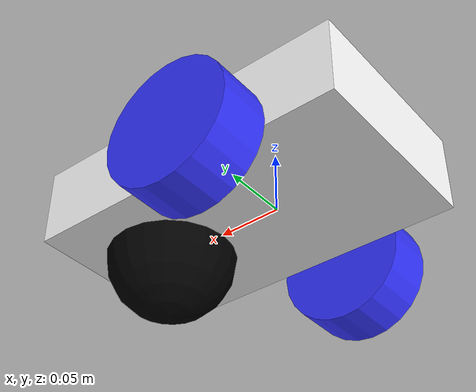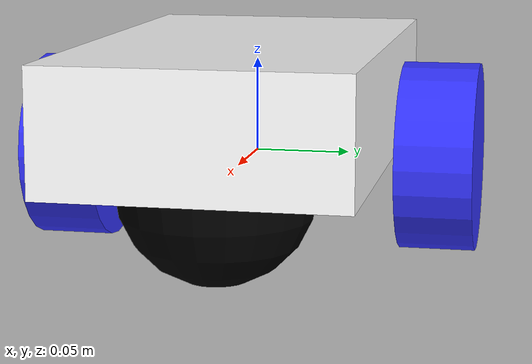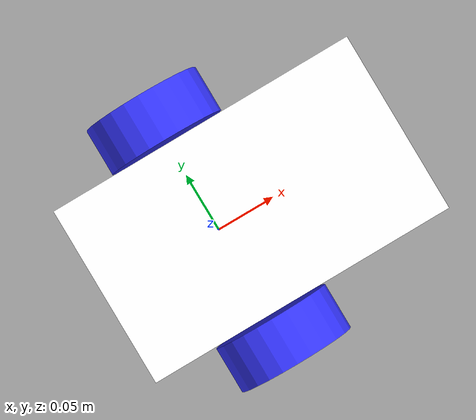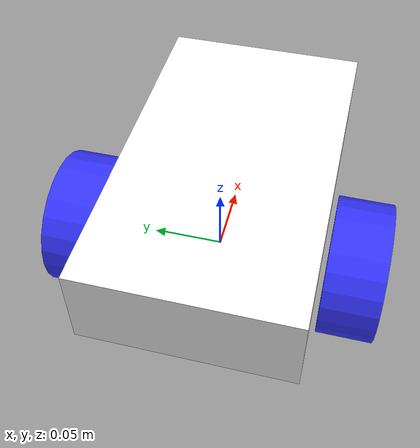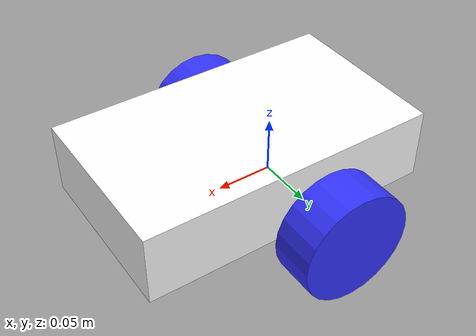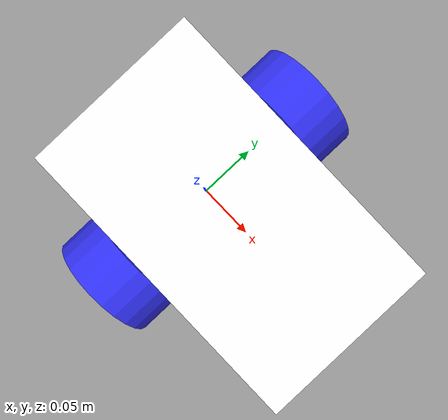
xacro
<?xml version="1.0"?>
<robot xmlns:xacro="http://www.ros.org/wiki/xacro" >

    <xacro:include filename="inertial_macros.xacro"/>

    <material name="white">
        <color rgba="1 1 1 1"/>
    </material>

    <material name="orange">
        <color rgba="1 0.3 0.1 1"/>
    </material>

    <material name="blue">
        <color rgba="0.2 0.2 1 1"/>
    </material>

    <material name="black">
        <color rgba="0 0 0 1"/>
    </material>

<!-- base link -->

    <link name="base_link">

    </link>

<!--  chassis link-->

    <joint name="chassis_joint" type="fixed">
        <parent link="base_link"/>
        <child link="chassis"/>
        <origin xyz="-0.1 0 0"/>
    </joint>

    <link name="chassis">
        <visual>
            <origin xyz="0.13 0 0.032"/>
            <geometry>
                <box size="0.26 0.152 0.063"/>
            </geometry>
            <material name="white"/>
        </visual>

         <collision>
            <origin xyz="0.13 0 0.032"/>
            <geometry>
                <box size="0.26 0.152 0.063"/>
            </geometry>
        </collision>
        <xacro:inertial_box mass="0.5" x="0.26" y="0.152" z="0.063">
            <origin xyz="0.13 0 0.032" rpy="0 0 0"/>
        </xacro:inertial_box>

    </link>

<!--  left wheel link-->

    <joint name="left_wheel_joint" type="continuous">
        <parent link="base_link"/>
        <child link="left_wheel"/>
        <origin xyz="0 0.1 0" rpy="-${pi/2} 0 0"/>
        <axis xyz="0 0 1" />
    </joint>

    <link name="left_wheel">
        <visual>
            <geometry>
                <cylinder radius="0.05" length="0.04"/>
            </geometry>
            <material name="blue"/>
        </visual>

        <collision>
            <geometry>
                <cylinder radius="0.05" length="0.04"/>
            </geometry>
        </collision>

        <xacro:inertial_cylinder mass="0.1" length="0.04" radius="0.05">
            <origin xyz="0 0 0 " rpy="0 0 0"/>

        </xacro:inertial_cylinder>
    </link>

<!--  right wheel link-->

    <joint name="right_wheel_joint" type="continuous">
        <parent link="base_link"/>
        <child link="right_wheel"/>
        <origin xyz="0 -0.1 0" rpy="${pi/2} 0 0"/>
        <axis xyz="0 0 -1" />
    </joint>

    <link name="right_wheel">
        <visual>
            <geometry>
                <cylinder radius="0.05" length="0.04"/>
            </geometry>
            <material name="blue"/>
        </visual>

         <collision>
            <geometry>
                <cylinder radius="0.05" length="0.04"/>
            </geometry>
        </collision>

        <xacro:inertial_cylinder mass="0.1" length="0.04" radius="0.05">
            <origin xyz="0 0 0 " rpy="0 0 0"/>
        </xacro:inertial_cylinder>
    </link>

<!--  caster wheeel link-->

    <joint name="caster_wheel_joint" type="fixed">
        <parent link="chassis"/>
        <child link="center_wheel"/>
        <origin xyz="0.2 0 0" />
    </joint>

    <link name="center_wheel">
        <visual>
            <geometry>
                <sphere radius="0.05" />
            </geometry>
            <material name="black"/>
        </visual>

        <collision>
            <geometry>
                <sphere radius="0.05" />
            </geometry>
        </collision>

        <xacro:inertial_sphere mass="0.1" radius="0.05">
            <origin xyz="0.2 0 0" rpy="0 0 0"/>
        </xacro:inertial_sphere>
    </link>
</robot>
